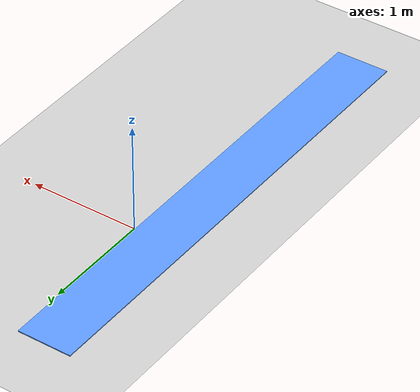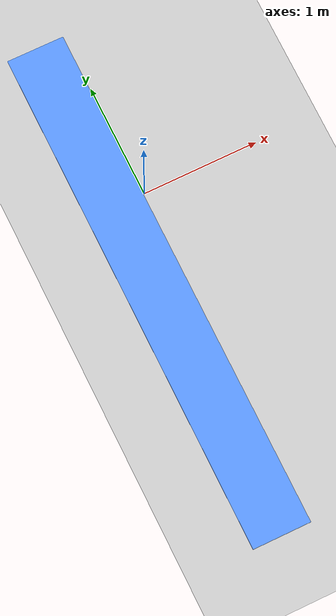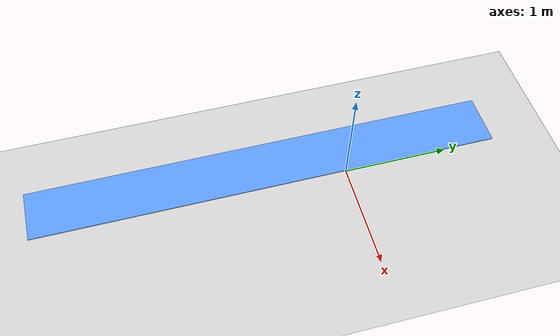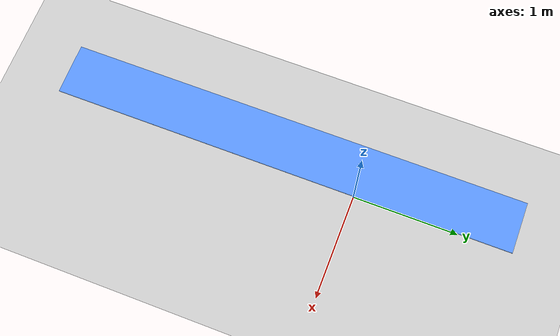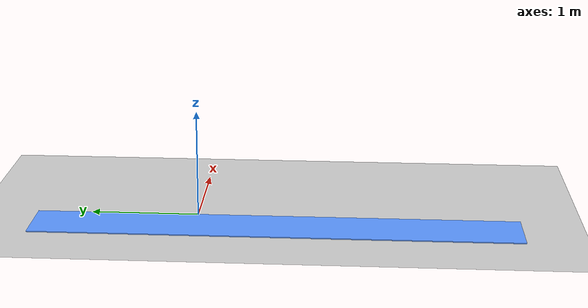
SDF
<sdf version="1.4">
 <world name="default">
  <light name="sun" type="directional">
   <pose>0 0 10 0 -0 0</pose>
   <diffuse>0.8 0.8 0.8 1</diffuse>
   <specular>0.2 0.2 0.2 1</specular>
   <attenuation>
    <range>1000</range>
    <constant>0.9</constant>
    <linear>0.01</linear>
    <quadratic>0.001</quadratic>
   </attenuation>
   <direction>-0.5 0.1 -0.9</direction>
  </light>
  <model name="ground_plane">
   <static>1</static>
   <link name="link">
    <collision name="collision">
     <geometry><plane><normal>0 0 1</normal><size>100 100</size></plane></geometry>
     <surface><friction><ode><mu>100</mu><mu2>50</mu2></ode></friction></surface>
    </collision>
    <visual name="visual">
     <cast_shadows>0</cast_shadows>
     <geometry><plane><normal>0 0 1</normal><size>100 100</size></plane></geometry>
     <material>
      <script><uri>file://media/materials/scripts/gazebo.material</uri><name>Gazebo/Grey</name></script>
     </material>
    </visual>
    <velocity_decay><linear>0</linear><angular>0</angular></velocity_decay>
   </link>
  </model>
  <model name="pista2">
   <link name="link_0">
    <pose>0.210878 0.063292 0 0 -0 0</pose>
    <inertial>
     <mass>0.149451</mass>
     <inertia>
      <ixx>0.193081</ixx>
      <ixy>0</ixy>
      <ixz>0</ixz>
      <iyy>0.0124722</iyy>
      <iyz>0</iyz>
      <izz>0.205517</izz>
     </inertia>
    </inertial>
    <visual name="visual">
     <pose>-0.47 -0.80 0 0 -0 0</pose>
     <geometry><box><size>0.5 4.5 0.01</size></box></geometry>
     <material>
      <lighting>1</lighting>
      <script><uri>file://media/materials/scripts/gazebo.material</uri><name>Gazebo/Grey</name></script>
      <shader type="pixel"><normal_map>__default__</normal_map></shader>
      <ambient>0.353 0.588 1 1</ambient>
      <diffuse>0.353 0.588 1 1</diffuse>
      <specular>0.01 0.1 1 1</specular>
      <emissive>0 0 0 1</emissive>
     </material>
    </visual>
    <collision name="collision">
     <geometry><box><size>0.5 4.5 0.01</size></box></geometry>
     <surface>
      <friction>
       <ode><mu>1</mu><mu2>1</mu2><fdir1>0 0 0</fdir1><slip1>0</slip1><slip2>0</slip2></ode>
       <torsional>
        <coefficient>1</coefficient>
        <patch_radius>0</patch_radius>
        <surface_radius>0</surface_radius>
        <use_patch_radius>1</use_patch_radius>
        <ode><slip>0</slip></ode>
       </torsional>
      </friction>
      <bounce><restitution_coefficient>0</restitution_coefficient><threshold>1e+06</threshold></bounce>
      <contact>
       <collide_without_contact>0</collide_without_contact>
       <collide_without_contact_bitmask>1</collide_without_contact_bitmask>
       <collide_bitmask>1</collide_bitmask>
       <ode>
        <soft_cfm>0</soft_cfm>
        <soft_erp>0.2</soft_erp>
        <kp>1e+13</kp>
        <kd>1</kd>
        <max_vel>0.01</max_vel>
        <min_depth>0</min_depth>
       </ode>
       <bullet>
        <split_impulse>1</split_impulse>
        <split_impulse_penetration_threshold>-0.01</split_impulse_penetration_threshold>
        <soft_cfm>0</soft_cfm>
        <soft_erp>0.2</soft_erp>
        <kp>1e+13</kp>
        <kd>1</kd>
       </bullet>
      </contact>
     </surface>
    </collision>
   </link>
   <static>0</static>
  </model>
  <physics type="ode">
   <max_step_size>0.001</max_step_size>
   <real_time_factor>1</real_time_factor>
   <real_time_update_rate>1000</real_time_update_rate>
   <gravity>0 0 -9.8</gravity>
  </physics>
  <scene><ambient>0.4 0.4 0.4 1</ambient><background>0.7 0.7 0.7 1</background><shadows>1</shadows></scene>
 </world>
</sdf>
